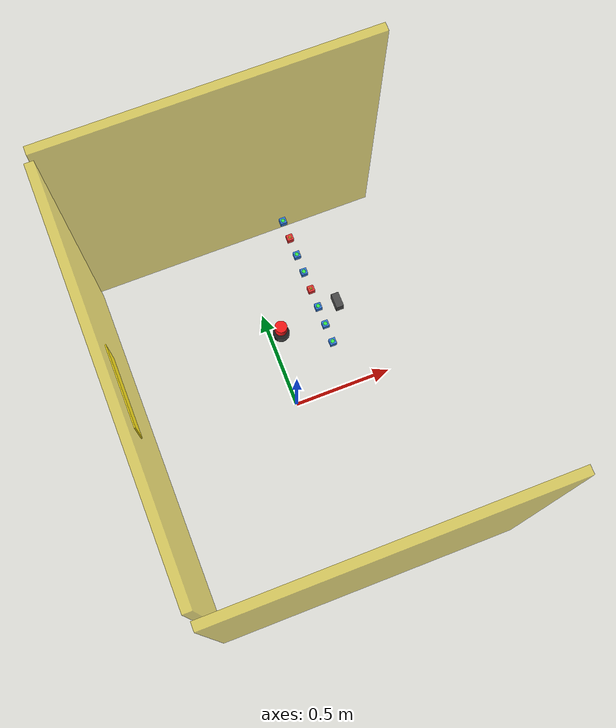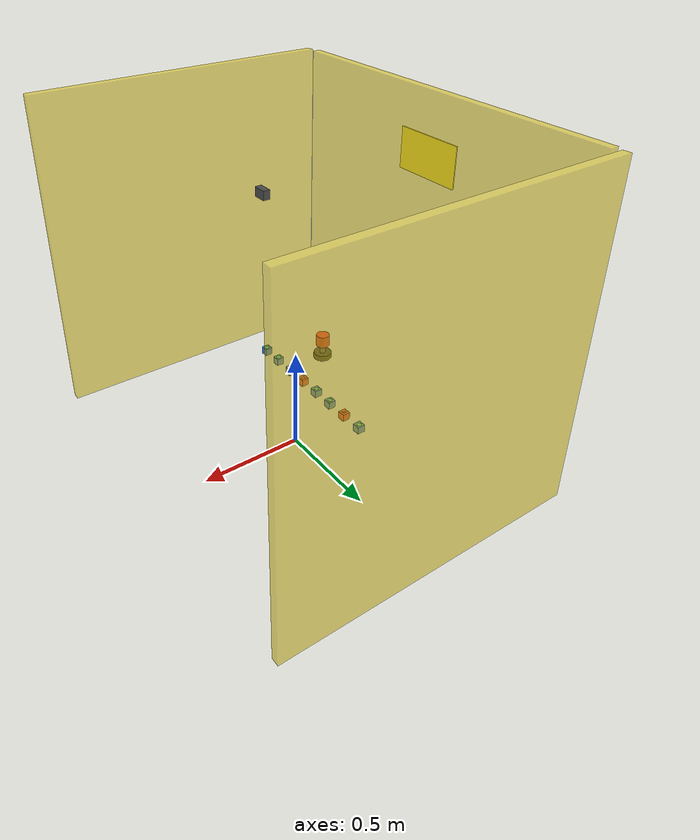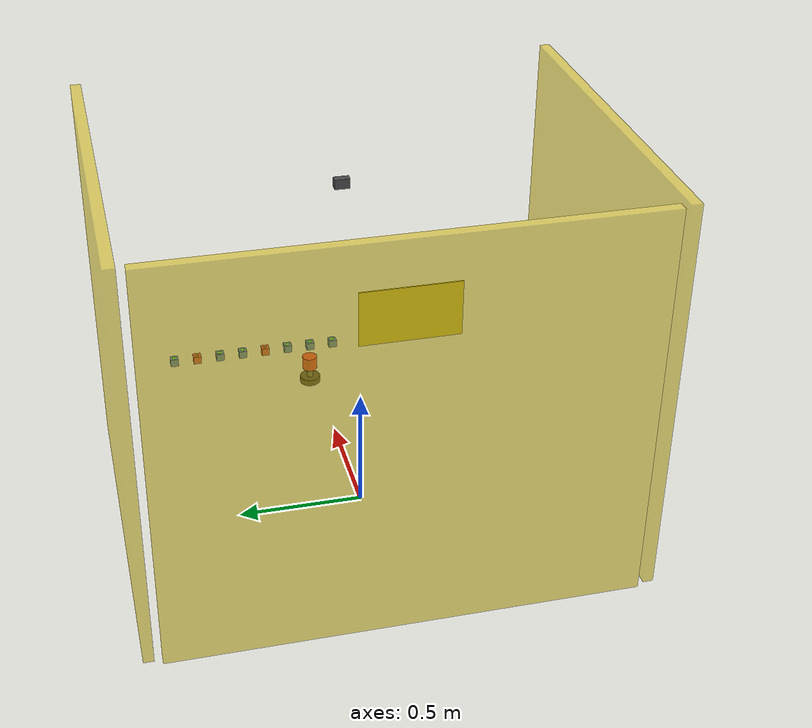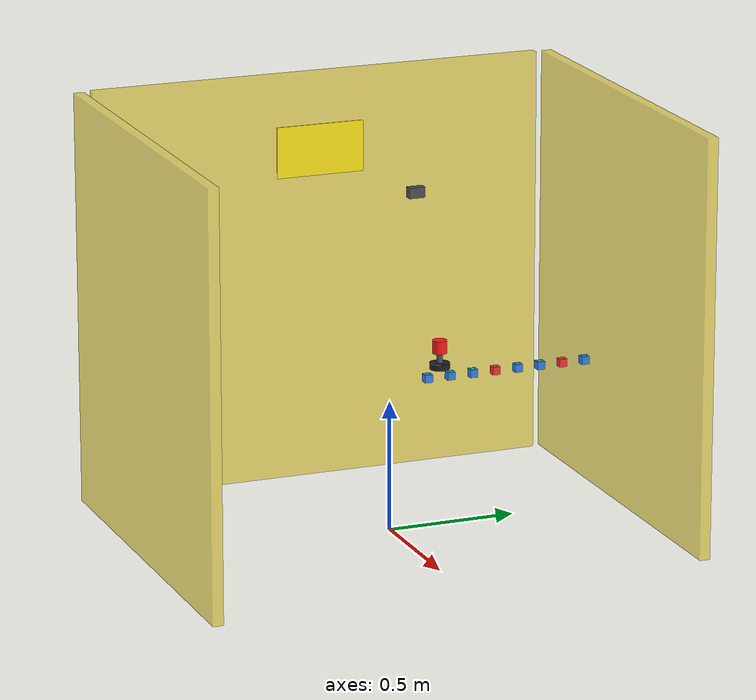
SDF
<sdf version="1.6">
 <world name="default">
  <model name="overhead_camera_model">
   <static>true</static>
   <pose>0.18 0.03 1.35 0 1.5708 0</pose>
   <link name="camera_link">
    <sensor name="top_camera" type="camera">
     <always_on>true</always_on>
     <update_rate>30</update_rate>
     <visualize>false</visualize>
     <camera>
      <horizontal_fov>1.25</horizontal_fov>
      <image><width>1280</width><height>720</height><format>R8G8B8</format></image>
      <clip><near>0.01</near><far>10.0</far></clip>
     </camera>
     <plugin name="overhead_camera_driver" filename="libgazebo_ros_camera.so">
      <ros>
       <remapping>~/image_raw:=/top_camera/image_raw</remapping>
       <remapping>~/camera_info:=/top_camera/camera_info</remapping>
      </ros>
      <camera_name>top_camera</camera_name>
      <frame_name>top_camera_link</frame_name>
     </plugin>
    </sensor>
    <visual name="cam_housing">
     <geometry><box><size>0.04 0.06 0.03</size></box></geometry>
     <material><ambient>0.2 0.2 0.2 1</ambient><diffuse>0.3 0.3 0.3 1</diffuse></material>
    </visual>
   </link>
  </model>
  <model name="emergency_stop_test_button">
   <static>true</static>
   <pose>0.0 0.20 0.694 0 0 0</pose>
   <link name="button_link">
    <collision name="button_collision">
     <geometry><cylinder><radius>0.028</radius><length>0.05</length></cylinder></geometry>
    </collision>
    <visual name="button_housing">
     <pose>0 0 -0.074 0 0 0</pose>
     <geometry><cylinder><radius>0.038</radius><length>0.024</length></cylinder></geometry>
     <material><ambient>0.08 0.08 0.08 1</ambient><diffuse>0.12 0.12 0.12 1</diffuse></material>
    </visual>
    <visual name="button_stem">
     <pose>0 0 -0.042 0 0 0</pose>
     <geometry><cylinder><radius>0.012</radius><length>0.052</length></cylinder></geometry>
     <material><ambient>0.25 0.25 0.25 1</ambient><diffuse>0.32 0.32 0.32 1</diffuse></material>
    </visual>
    <visual name="button_cap">
     <geometry><cylinder><radius>0.028</radius><length>0.05</length></cylinder></geometry>
     <material><ambient>0.9 0.05 0.05 1</ambient><diffuse>1.0 0.1 0.1 1</diffuse></material>
    </visual>
    <sensor name="estop_contact_sensor" type="contact">
     <always_on>true</always_on>
     <update_rate>50</update_rate>
     <contact><collision>button_collision</collision></contact>
     <plugin filename="libgazebo_ros_bumper.so" name="estop_contact_controller">
      <ros><remapping>bumper_states:=/aria/industrial/estop_contact</remapping></ros>
      <frame_name>button_link</frame_name>
     </plugin>
    </sensor>
   </link>
  </model>
  <model name="safety_perimeter_fence">
   <static>true</static>
   <link name="fence_link">
    <collision name="rear_fence_col">
     <pose>-0.75 0.0 0.80 0 0 0</pose>
     <geometry><box><size>0.04 1.80 1.60</size></box></geometry>
    </collision>
    <visual name="rear_fence_frame">
     <pose>-0.75 0.0 0.80 0 0 0</pose>
     <geometry><box><size>0.04 1.80 1.60</size></box></geometry>
     <material><ambient>0.8 0.7 0.1 0.5</ambient><diffuse>0.9 0.8 0.1 0.6</diffuse></material>
    </visual>
    <collision name="left_fence_col">
     <pose>0.0 0.95 0.80 0 0 0</pose>
     <geometry><box><size>1.50 0.04 1.60</size></box></geometry>
    </collision>
    <visual name="left_fence_frame">
     <pose>0.0 0.95 0.80 0 0 0</pose>
     <geometry><box><size>1.50 0.04 1.60</size></box></geometry>
     <material><ambient>0.8 0.7 0.1 0.5</ambient><diffuse>0.9 0.8 0.1 0.6</diffuse></material>
    </visual>
    <collision name="right_fence_col">
     <pose>0.0 -0.95 0.80 0 0 0</pose>
     <geometry><box><size>1.50 0.04 1.60</size></box></geometry>
    </collision>
    <visual name="right_fence_frame">
     <pose>0.0 -0.95 0.80 0 0 0</pose>
     <geometry><box><size>1.50 0.04 1.60</size></box></geometry>
     <material><ambient>0.8 0.7 0.1 0.5</ambient><diffuse>0.9 0.8 0.1 0.6</diffuse></material>
    </visual>
    <visual name="warning_sign">
     <pose>-0.72 0.0 1.30 0 0 0</pose>
     <geometry><box><size>0.005 0.35 0.20</size></box></geometry>
     <material><ambient>0.9 0.8 0.1 1</ambient><diffuse>1.0 0.9 0.1 1</diffuse></material>
    </visual>
   </link>
  </model>
  <include>
   <uri>model://workpiece_good</uri>
   <name>workpiece_01</name>
   <pose>0.20 0.070 0.644 0 0 0</pose>
  </include>
  <include>
   <uri>model://workpiece_good</uri>
   <name>workpiece_02</name>
   <pose>0.20 0.160 0.644 0 0 0</pose>
  </include>
  <include>
   <uri>model://workpiece_good</uri>
   <name>workpiece_03</name>
   <pose>0.20 0.250 0.644 0 0 0</pose>
  </include>
  <include>
   <uri>model://workpiece_defect</uri>
   <name>workpiece_04</name>
   <pose>0.20 0.340 0.644 0 0 0</pose>
  </include>
  <include>
   <uri>model://workpiece_good</uri>
   <name>workpiece_05</name>
   <pose>0.20 0.430 0.644 0 0 0</pose>
  </include>
  <include>
   <uri>model://workpiece_good</uri>
   <name>workpiece_06</name>
   <pose>0.20 0.520 0.644 0 0 0</pose>
  </include>
  <include>
   <uri>model://workpiece_defect</uri>
   <name>workpiece_07</name>
   <pose>0.20 0.610 0.644 0 0 0</pose>
  </include>
  <include>
   <uri>model://workpiece_good</uri>
   <name>workpiece_08</name>
   <pose>0.20 0.700 0.644 0 0 0</pose>
  </include>
 </world>
</sdf>
